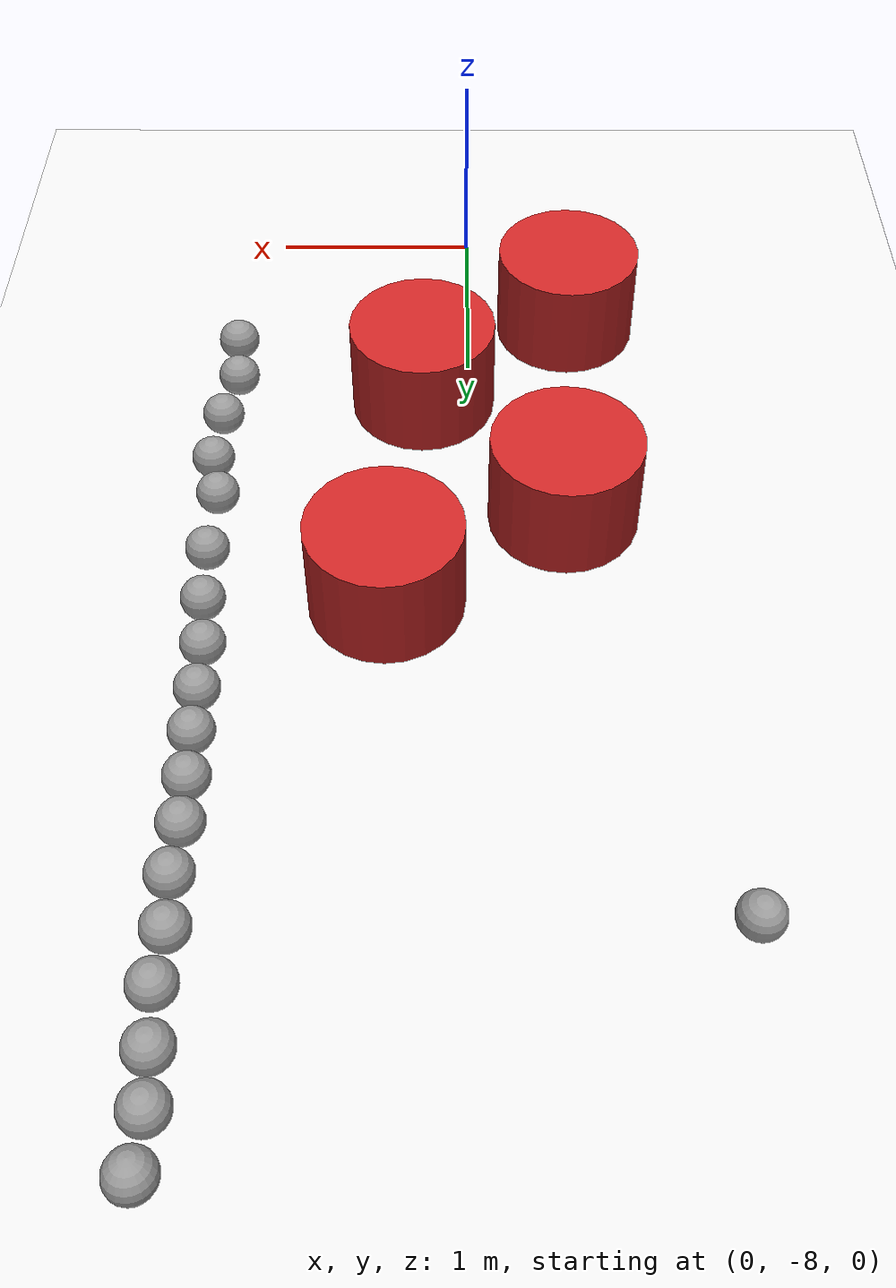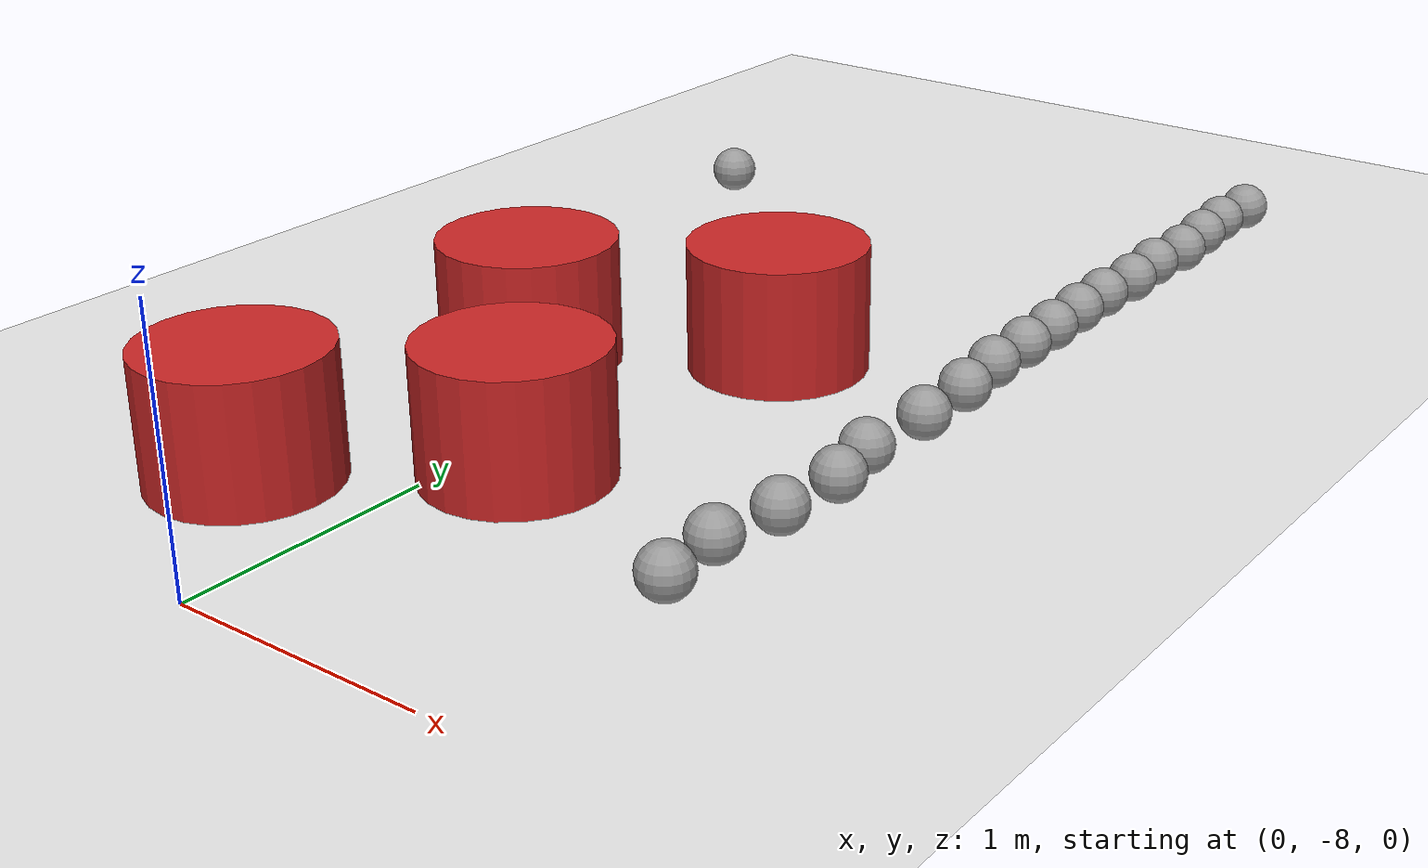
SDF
<sdf version="1.7">
 <world name="default">
  <model name="ground_plane">
   <static>1</static>
   <link name="link">
    <collision name="collision">
     <geometry><plane><normal>0 0 1</normal><size>100 100</size></plane></geometry>
     <surface>
      <contact><collide_bitmask>65535</collide_bitmask></contact>
      <friction><ode><mu>100</mu><mu2>50</mu2></ode></friction>
     </surface>
    </collision>
    <visual name="visual">
     <cast_shadows>0</cast_shadows>
     <geometry><plane><normal>0 0 1</normal><size>100 100</size></plane></geometry>
     <material>
      <script><uri>file://media/materials/scripts/gazebo.material</uri><name>Gazebo/White</name></script>
     </material>
    </visual>
   </link>
  </model>
  <model name="model8.3_0">
   <link name="link_1">
    <inertial>
     <mass>1</mass>
     <inertia><ixx>0.145833</ixx><ixy>0</ixy><ixz>0</ixz><iyy>0.145833</iyy><iyz>0</iyz><izz>0.125</izz></inertia>
    </inertial>
    <visual name="visual">
     <geometry><cylinder><radius>0.35</radius><length>0.5</length></cylinder></geometry>
     <material>
      <lighting>1</lighting>
      <script><uri>file://media/materials/scripts/gazebo.material</uri><name>Gazebo/Red</name></script>
      <shader type="pixel"><normal_map>__default__</normal_map></shader>
      <ambient>0.937 0.161 0.161 1</ambient>
      <diffuse>0.7 0.7 0.7 1</diffuse>
      <specular>0.01 0.01 0.01 1</specular>
      <emissive>0 0 0 1</emissive>
     </material>
    </visual>
    <collision name="collision">
     <geometry><cylinder><radius>0.35</radius><length>0.5</length></cylinder></geometry>
     <surface>
      <friction>
       <ode><mu>1</mu><mu2>1</mu2><fdir1>0 0 0</fdir1><slip1>0</slip1><slip2>0</slip2></ode>
       <torsional>
        <coefficient>1</coefficient>
        <patch_radius>0</patch_radius>
        <surface_radius>0</surface_radius>
        <use_patch_radius>1</use_patch_radius>
        <ode><slip>0</slip></ode>
       </torsional>
      </friction>
      <bounce><restitution_coefficient>0</restitution_coefficient><threshold>1e+06</threshold></bounce>
      <contact>
       <collide_without_contact>0</collide_without_contact>
       <collide_without_contact_bitmask>1</collide_without_contact_bitmask>
       <collide_bitmask>1</collide_bitmask>
       <ode>
        <soft_cfm>0</soft_cfm>
        <soft_erp>0.2</soft_erp>
        <kp>1e+13</kp>
        <kd>1</kd>
        <max_vel>0.01</max_vel>
        <min_depth>0</min_depth>
       </ode>
       <bullet>
        <split_impulse>1</split_impulse>
        <split_impulse_penetration_threshold>-0.01</split_impulse_penetration_threshold>
        <soft_cfm>0</soft_cfm>
        <soft_erp>0.2</soft_erp>
        <kp>1e+13</kp>
        <kd>1</kd>
       </bullet>
      </contact>
     </surface>
    </collision>
   </link>
   <static>0</static>
   <pose>-0.441492 -5.95517 0.249991 0 -0 0</pose>
  </model>
  <model name="model8.3_1">
   <link name="link_1">
    <inertial>
     <mass>1</mass>
     <inertia><ixx>0.145833</ixx><ixy>0</ixy><ixz>0</ixz><iyy>0.145833</iyy><iyz>0</iyz><izz>0.125</izz></inertia>
    </inertial>
    <visual name="visual">
     <geometry><cylinder><radius>0.35</radius><length>0.5</length></cylinder></geometry>
     <material>
      <lighting>1</lighting>
      <script><uri>file://media/materials/scripts/gazebo.material</uri><name>Gazebo/Red</name></script>
      <shader type="pixel"><normal_map>__default__</normal_map></shader>
      <ambient>0.937 0.161 0.161 1</ambient>
      <diffuse>0.7 0.7 0.7 1</diffuse>
      <specular>0.01 0.01 0.01 1</specular>
      <emissive>0 0 0 1</emissive>
     </material>
    </visual>
    <collision name="collision">
     <geometry><cylinder><radius>0.35</radius><length>0.5</length></cylinder></geometry>
     <surface>
      <friction>
       <ode><mu>1</mu><mu2>1</mu2><fdir1>0 0 0</fdir1><slip1>0</slip1><slip2>0</slip2></ode>
       <torsional>
        <coefficient>1</coefficient>
        <patch_radius>0</patch_radius>
        <surface_radius>0</surface_radius>
        <use_patch_radius>1</use_patch_radius>
        <ode><slip>0</slip></ode>
       </torsional>
      </friction>
      <bounce><restitution_coefficient>0</restitution_coefficient><threshold>1e+06</threshold></bounce>
      <contact>
       <collide_without_contact>0</collide_without_contact>
       <collide_without_contact_bitmask>1</collide_without_contact_bitmask>
       <collide_bitmask>1</collide_bitmask>
       <ode>
        <soft_cfm>0</soft_cfm>
        <soft_erp>0.2</soft_erp>
        <kp>1e+13</kp>
        <kd>1</kd>
        <max_vel>0.01</max_vel>
        <min_depth>0</min_depth>
       </ode>
       <bullet>
        <split_impulse>1</split_impulse>
        <split_impulse_penetration_threshold>-0.01</split_impulse_penetration_threshold>
        <soft_cfm>0</soft_cfm>
        <soft_erp>0.2</soft_erp>
        <kp>1e+13</kp>
        <kd>1</kd>
       </bullet>
      </contact>
     </surface>
    </collision>
   </link>
   <static>0</static>
   <pose>-0.509132 -7.31346 0.25 0 -0 0</pose>
  </model>
  <model name="model8.4_0">
   <link name="link_1">
    <inertial>
     <mass>1</mass>
     <inertia><ixx>0.145833</ixx><ixy>0</ixy><ixz>0</ixz><iyy>0.145833</iyy><iyz>0</iyz><izz>0.125</izz></inertia>
    </inertial>
    <visual name="visual">
     <geometry><cylinder><radius>0.35</radius><length>0.5</length></cylinder></geometry>
     <material>
      <lighting>1</lighting>
      <script><uri>file://media/materials/scripts/gazebo.material</uri><name>Gazebo/Red</name></script>
      <shader type="pixel"><normal_map>__default__</normal_map></shader>
      <ambient>0.808 0.361 0 1</ambient>
      <diffuse>0.7 0.7 0.7 1</diffuse>
      <specular>0.01 0.01 0.01 1</specular>
      <emissive>0 0 0 1</emissive>
     </material>
    </visual>
    <collision name="collision">
     <geometry><cylinder><radius>0.35</radius><length>0.5</length></cylinder></geometry>
     <surface>
      <friction>
       <ode><mu>1</mu><mu2>1</mu2><fdir1>0 0 0</fdir1><slip1>0</slip1><slip2>0</slip2></ode>
       <torsional>
        <coefficient>1</coefficient>
        <patch_radius>0</patch_radius>
        <surface_radius>0</surface_radius>
        <use_patch_radius>1</use_patch_radius>
        <ode><slip>0</slip></ode>
       </torsional>
      </friction>
      <bounce><restitution_coefficient>0</restitution_coefficient><threshold>1e+06</threshold></bounce>
      <contact>
       <collide_without_contact>0</collide_without_contact>
       <collide_without_contact_bitmask>1</collide_without_contact_bitmask>
       <collide_bitmask>1</collide_bitmask>
       <ode>
        <soft_cfm>0</soft_cfm>
        <soft_erp>0.2</soft_erp>
        <kp>1e+13</kp>
        <kd>1</kd>
        <max_vel>0.01</max_vel>
        <min_depth>0</min_depth>
       </ode>
       <bullet>
        <split_impulse>1</split_impulse>
        <split_impulse_penetration_threshold>-0.01</split_impulse_penetration_threshold>
        <soft_cfm>0</soft_cfm>
        <soft_erp>0.2</soft_erp>
        <kp>1e+13</kp>
        <kd>1</kd>
       </bullet>
      </contact>
     </surface>
    </collision>
   </link>
   <static>0</static>
   <pose>0.219118 -6.74461 0.25 0 -0 0</pose>
  </model>
  <model name="model8.4_1">
   <link name="link_1">
    <inertial>
     <mass>1</mass>
     <inertia><ixx>0.145833</ixx><ixy>0</ixy><ixz>0</ixz><iyy>0.145833</iyy><iyz>0</iyz><izz>0.125</izz></inertia>
    </inertial>
    <visual name="visual">
     <geometry><cylinder><radius>0.35</radius><length>0.5</length></cylinder></geometry>
     <material>
      <lighting>1</lighting>
      <script><uri>file://media/materials/scripts/gazebo.material</uri><name>Gazebo/Red</name></script>
      <shader type="pixel"><normal_map>__default__</normal_map></shader>
      <ambient>0.808 0.361 0 1</ambient>
      <diffuse>0.7 0.7 0.7 1</diffuse>
      <specular>0.01 0.01 0.01 1</specular>
      <emissive>0 0 0 1</emissive>
     </material>
    </visual>
    <collision name="collision">
     <geometry><cylinder><radius>0.35</radius><length>0.5</length></cylinder></geometry>
     <surface>
      <friction>
       <ode><mu>1</mu><mu2>1</mu2><fdir1>0 0 0</fdir1><slip1>0</slip1><slip2>0</slip2></ode>
       <torsional>
        <coefficient>1</coefficient>
        <patch_radius>0</patch_radius>
        <surface_radius>0</surface_radius>
        <use_patch_radius>1</use_patch_radius>
        <ode><slip>0</slip></ode>
       </torsional>
      </friction>
      <bounce><restitution_coefficient>0</restitution_coefficient><threshold>1e+06</threshold></bounce>
      <contact>
       <collide_without_contact>0</collide_without_contact>
       <collide_without_contact_bitmask>1</collide_without_contact_bitmask>
       <collide_bitmask>1</collide_bitmask>
       <ode>
        <soft_cfm>0</soft_cfm>
        <soft_erp>0.2</soft_erp>
        <kp>1e+13</kp>
        <kd>1</kd>
        <max_vel>0.01</max_vel>
        <min_depth>0</min_depth>
       </ode>
       <bullet>
        <split_impulse>1</split_impulse>
        <split_impulse_penetration_threshold>-0.01</split_impulse_penetration_threshold>
        <soft_cfm>0</soft_cfm>
        <soft_erp>0.2</soft_erp>
        <kp>1e+13</kp>
        <kd>1</kd>
       </bullet>
      </contact>
     </surface>
    </collision>
   </link>
   <static>0</static>
   <pose>0.362916 -5.43964 0.25 0 -0 0</pose>
  </model>
  <model name="sphere_7">
   <link name="link_0">
    <inertial>
     <mass>1</mass>
     <inertia><ixx>0.1</ixx><ixy>0</ixy><ixz>0</ixz><iyy>0.1</iyy><iyz>0</iyz><izz>0.1</izz></inertia>
    </inertial>
    <visual name="visual">
     <geometry><sphere><radius>0.1</radius></sphere></geometry>
     <material>
      <lighting>1</lighting>
      <script><uri>file://media/materials/scripts/gazebo.material</uri><name>Gazebo/Grey</name></script>
      <shader type="pixel"><normal_map>__default__</normal_map></shader>
      <ambient>0.3 0.3 0.3 1</ambient>
      <diffuse>0.7 0.7 0.7 1</diffuse>
      <specular>0.01 0.01 0.01 1</specular>
      <emissive>0 0 0 1</emissive>
     </material>
    </visual>
    <collision name="collision">
     <geometry><sphere><radius>0.1</radius></sphere></geometry>
     <surface>
      <friction>
       <ode><mu>1</mu><mu2>1</mu2><fdir1>0 0 0</fdir1><slip1>0</slip1><slip2>0</slip2></ode>
       <torsional>
        <coefficient>1</coefficient>
        <patch_radius>0</patch_radius>
        <surface_radius>0</surface_radius>
        <use_patch_radius>1</use_patch_radius>
        <ode><slip>0</slip></ode>
       </torsional>
      </friction>
      <bounce><restitution_coefficient>0</restitution_coefficient><threshold>1e+06</threshold></bounce>
      <contact>
       <collide_without_contact>0</collide_without_contact>
       <collide_without_contact_bitmask>1</collide_without_contact_bitmask>
       <collide_bitmask>1</collide_bitmask>
       <ode>
        <soft_cfm>0</soft_cfm>
        <soft_erp>0.2</soft_erp>
        <kp>1e+13</kp>
        <kd>1</kd>
        <max_vel>0.01</max_vel>
        <min_depth>0</min_depth>
       </ode>
       <bullet>
        <split_impulse>1</split_impulse>
        <split_impulse_penetration_threshold>-0.01</split_impulse_penetration_threshold>
        <soft_cfm>0</soft_cfm>
        <soft_erp>0.2</soft_erp>
        <kp>1e+13</kp>
        <kd>1</kd>
       </bullet>
      </contact>
     </surface>
    </collision>
   </link>
   <static>0</static>
   <pose>-1.07358 -3.84349 0.1 0 -0 0</pose>
  </model>
  <model name="sphere_37">
   <link name="link_0">
    <inertial>
     <mass>1</mass>
     <inertia><ixx>0.1</ixx><ixy>0</ixy><ixz>0</ixz><iyy>0.1</iyy><iyz>0</iyz><izz>0.1</izz></inertia>
    </inertial>
    <visual name="visual">
     <geometry><sphere><radius>0.1</radius></sphere></geometry>
     <material>
      <lighting>1</lighting>
      <script><uri>file://media/materials/scripts/gazebo.material</uri><name>Gazebo/Grey</name></script>
      <shader type="pixel"><normal_map>__default__</normal_map></shader>
      <ambient>0.3 0.3 0.3 1</ambient>
      <diffuse>0.7 0.7 0.7 1</diffuse>
      <specular>0.01 0.01 0.01 1</specular>
      <emissive>0 0 0 1</emissive>
     </material>
    </visual>
    <collision name="collision">
     <geometry><sphere><radius>0.1</radius></sphere></geometry>
     <surface>
      <friction>
       <ode><mu>1</mu><mu2>1</mu2><fdir1>0 0 0</fdir1><slip1>0</slip1><slip2>0</slip2></ode>
       <torsional>
        <coefficient>1</coefficient>
        <patch_radius>0</patch_radius>
        <surface_radius>0</surface_radius>
        <use_patch_radius>1</use_patch_radius>
        <ode><slip>0</slip></ode>
       </torsional>
      </friction>
      <bounce><restitution_coefficient>0</restitution_coefficient><threshold>1e+06</threshold></bounce>
      <contact>
       <collide_without_contact>0</collide_without_contact>
       <collide_without_contact_bitmask>1</collide_without_contact_bitmask>
       <collide_bitmask>1</collide_bitmask>
       <ode>
        <soft_cfm>0</soft_cfm>
        <soft_erp>0.2</soft_erp>
        <kp>1e+13</kp>
        <kd>1</kd>
        <max_vel>0.01</max_vel>
        <min_depth>0</min_depth>
       </ode>
       <bullet>
        <split_impulse>1</split_impulse>
        <split_impulse_penetration_threshold>-0.01</split_impulse_penetration_threshold>
        <soft_cfm>0</soft_cfm>
        <soft_erp>0.2</soft_erp>
        <kp>1e+13</kp>
        <kd>1</kd>
       </bullet>
      </contact>
     </surface>
    </collision>
   </link>
   <static>0</static>
   <pose>1.12535 -2.89863 0.1 0.168242 0.012729 -0.026032</pose>
  </model>
  <model name="sphere_38">
   <link name="link_0">
    <inertial>
     <mass>1</mass>
     <inertia><ixx>0.1</ixx><ixy>0</ixy><ixz>0</ixz><iyy>0.1</iyy><iyz>0</iyz><izz>0.1</izz></inertia>
    </inertial>
    <visual name="visual">
     <geometry><sphere><radius>0.1</radius></sphere></geometry>
     <material>
      <lighting>1</lighting>
      <script><uri>file://media/materials/scripts/gazebo.material</uri><name>Gazebo/Grey</name></script>
      <shader type="pixel"><normal_map>__default__</normal_map></shader>
      <ambient>0.3 0.3 0.3 1</ambient>
      <diffuse>0.7 0.7 0.7 1</diffuse>
      <specular>0.01 0.01 0.01 1</specular>
      <emissive>0 0 0 1</emissive>
     </material>
    </visual>
    <collision name="collision">
     <geometry><sphere><radius>0.1</radius></sphere></geometry>
     <surface>
      <friction>
       <ode><mu>1</mu><mu2>1</mu2><fdir1>0 0 0</fdir1><slip1>0</slip1><slip2>0</slip2></ode>
       <torsional>
        <coefficient>1</coefficient>
        <patch_radius>0</patch_radius>
        <surface_radius>0</surface_radius>
        <use_patch_radius>1</use_patch_radius>
        <ode><slip>0</slip></ode>
       </torsional>
      </friction>
      <bounce><restitution_coefficient>0</restitution_coefficient><threshold>1e+06</threshold></bounce>
      <contact>
       <collide_without_contact>0</collide_without_contact>
       <collide_without_contact_bitmask>1</collide_without_contact_bitmask>
       <collide_bitmask>1</collide_bitmask>
       <ode>
        <soft_cfm>0</soft_cfm>
        <soft_erp>0.2</soft_erp>
        <kp>1e+13</kp>
        <kd>1</kd>
        <max_vel>0.01</max_vel>
        <min_depth>0</min_depth>
       </ode>
       <bullet>
        <split_impulse>1</split_impulse>
        <split_impulse_penetration_threshold>-0.01</split_impulse_penetration_threshold>
        <soft_cfm>0</soft_cfm>
        <soft_erp>0.2</soft_erp>
        <kp>1e+13</kp>
        <kd>1</kd>
       </bullet>
      </contact>
     </surface>
    </collision>
   </link>
   <static>0</static>
   <pose>1.11071 -3.12075 0.1 0 -0 0</pose>
  </model>
  <model name="sphere_39">
   <link name="link_0">
    <inertial>
     <mass>1</mass>
     <inertia><ixx>0.1</ixx><ixy>0</ixy><ixz>0</ixz><iyy>0.1</iyy><iyz>0</iyz><izz>0.1</izz></inertia>
    </inertial>
    <visual name="visual">
     <geometry><sphere><radius>0.1</radius></sphere></geometry>
     <material>
      <lighting>1</lighting>
      <script><uri>file://media/materials/scripts/gazebo.material</uri><name>Gazebo/Grey</name></script>
      <shader type="pixel"><normal_map>__default__</normal_map></shader>
      <ambient>0.3 0.3 0.3 1</ambient>
      <diffuse>0.7 0.7 0.7 1</diffuse>
      <specular>0.01 0.01 0.01 1</specular>
      <emissive>0 0 0 1</emissive>
     </material>
    </visual>
    <collision name="collision">
     <geometry><sphere><radius>0.1</radius></sphere></geometry>
     <surface>
      <friction>
       <ode><mu>1</mu><mu2>1</mu2><fdir1>0 0 0</fdir1><slip1>0</slip1><slip2>0</slip2></ode>
       <torsional>
        <coefficient>1</coefficient>
        <patch_radius>0</patch_radius>
        <surface_radius>0</surface_radius>
        <use_patch_radius>1</use_patch_radius>
        <ode><slip>0</slip></ode>
       </torsional>
      </friction>
      <bounce><restitution_coefficient>0</restitution_coefficient><threshold>1e+06</threshold></bounce>
      <contact>
       <collide_without_contact>0</collide_without_contact>
       <collide_without_contact_bitmask>1</collide_without_contact_bitmask>
       <collide_bitmask>1</collide_bitmask>
       <ode>
        <soft_cfm>0</soft_cfm>
        <soft_erp>0.2</soft_erp>
        <kp>1e+13</kp>
        <kd>1</kd>
        <max_vel>0.01</max_vel>
        <min_depth>0</min_depth>
       </ode>
       <bullet>
        <split_impulse>1</split_impulse>
        <split_impulse_penetration_threshold>-0.01</split_impulse_penetration_threshold>
        <soft_cfm>0</soft_cfm>
        <soft_erp>0.2</soft_erp>
        <kp>1e+13</kp>
        <kd>1</kd>
       </bullet>
      </contact>
     </surface>
    </collision>
   </link>
   <static>0</static>
   <pose>1.12497 -3.33582 0.1 0 -0 0</pose>
  </model>
  <model name="sphere_40">
   <link name="link_0">
    <inertial>
     <mass>1</mass>
     <inertia><ixx>0.1</ixx><ixy>0</ixy><ixz>0</ixz><iyy>0.1</iyy><iyz>0</iyz><izz>0.1</izz></inertia>
    </inertial>
    <visual name="visual">
     <geometry><sphere><radius>0.1</radius></sphere></geometry>
     <material>
      <lighting>1</lighting>
      <script><uri>file://media/materials/scripts/gazebo.material</uri><name>Gazebo/Grey</name></script>
      <shader type="pixel"><normal_map>__default__</normal_map></shader>
      <ambient>0.3 0.3 0.3 1</ambient>
      <diffuse>0.7 0.7 0.7 1</diffuse>
      <specular>0.01 0.01 0.01 1</specular>
      <emissive>0 0 0 1</emissive>
     </material>
    </visual>
    <collision name="collision">
     <geometry><sphere><radius>0.1</radius></sphere></geometry>
     <surface>
      <friction>
       <ode><mu>1</mu><mu2>1</mu2><fdir1>0 0 0</fdir1><slip1>0</slip1><slip2>0</slip2></ode>
       <torsional>
        <coefficient>1</coefficient>
        <patch_radius>0</patch_radius>
        <surface_radius>0</surface_radius>
        <use_patch_radius>1</use_patch_radius>
        <ode><slip>0</slip></ode>
       </torsional>
      </friction>
      <bounce><restitution_coefficient>0</restitution_coefficient><threshold>1e+06</threshold></bounce>
      <contact>
       <collide_without_contact>0</collide_without_contact>
       <collide_without_contact_bitmask>1</collide_without_contact_bitmask>
       <collide_bitmask>1</collide_bitmask>
       <ode>
        <soft_cfm>0</soft_cfm>
        <soft_erp>0.2</soft_erp>
        <kp>1e+13</kp>
        <kd>1</kd>
        <max_vel>0.01</max_vel>
        <min_depth>0</min_depth>
       </ode>
       <bullet>
        <split_impulse>1</split_impulse>
        <split_impulse_penetration_threshold>-0.01</split_impulse_penetration_threshold>
        <soft_cfm>0</soft_cfm>
        <soft_erp>0.2</soft_erp>
        <kp>1e+13</kp>
        <kd>1</kd>
       </bullet>
      </contact>
     </surface>
    </collision>
   </link>
   <static>0</static>
   <pose>1.14355 -3.57163 0.1 0 -0 0</pose>
  </model>
  <model name="sphere_41">
   <link name="link_0">
    <inertial>
     <mass>1</mass>
     <inertia><ixx>0.1</ixx><ixy>0</ixy><ixz>0</ixz><iyy>0.1</iyy><iyz>0</iyz><izz>0.1</izz></inertia>
    </inertial>
    <visual name="visual">
     <geometry><sphere><radius>0.1</radius></sphere></geometry>
     <material>
      <lighting>1</lighting>
      <script><uri>file://media/materials/scripts/gazebo.material</uri><name>Gazebo/Grey</name></script>
      <shader type="pixel"><normal_map>__default__</normal_map></shader>
      <ambient>0.3 0.3 0.3 1</ambient>
      <diffuse>0.7 0.7 0.7 1</diffuse>
      <specular>0.01 0.01 0.01 1</specular>
      <emissive>0 0 0 1</emissive>
     </material>
    </visual>
    <collision name="collision">
     <geometry><sphere><radius>0.1</radius></sphere></geometry>
     <surface>
      <friction>
       <ode><mu>1</mu><mu2>1</mu2><fdir1>0 0 0</fdir1><slip1>0</slip1><slip2>0</slip2></ode>
       <torsional>
        <coefficient>1</coefficient>
        <patch_radius>0</patch_radius>
        <surface_radius>0</surface_radius>
        <use_patch_radius>1</use_patch_radius>
        <ode><slip>0</slip></ode>
       </torsional>
      </friction>
      <bounce><restitution_coefficient>0</restitution_coefficient><threshold>1e+06</threshold></bounce>
      <contact>
       <collide_without_contact>0</collide_without_contact>
       <collide_without_contact_bitmask>1</collide_without_contact_bitmask>
       <collide_bitmask>1</collide_bitmask>
       <ode>
        <soft_cfm>0</soft_cfm>
        <soft_erp>0.2</soft_erp>
        <kp>1e+13</kp>
        <kd>1</kd>
        <max_vel>0.01</max_vel>
        <min_depth>0</min_depth>
       </ode>
       <bullet>
        <split_impulse>1</split_impulse>
        <split_impulse_penetration_threshold>-0.01</split_impulse_penetration_threshold>
        <soft_cfm>0</soft_cfm>
        <soft_erp>0.2</soft_erp>
        <kp>1e+13</kp>
        <kd>1</kd>
       </bullet>
      </contact>
     </surface>
    </collision>
   </link>
   <static>0</static>
   <pose>1.12477 -3.79542 0.1 0 -0 0</pose>
  </model>
  <model name="sphere_42">
   <link name="link_0">
    <inertial>
     <mass>1</mass>
     <inertia><ixx>0.1</ixx><ixy>0</ixy><ixz>0</ixz><iyy>0.1</iyy><iyz>0</iyz><izz>0.1</izz></inertia>
    </inertial>
    <visual name="visual">
     <geometry><sphere><radius>0.1</radius></sphere></geometry>
     <material>
      <lighting>1</lighting>
      <script><uri>file://media/materials/scripts/gazebo.material</uri><name>Gazebo/Grey</name></script>
      <shader type="pixel"><normal_map>__default__</normal_map></shader>
      <ambient>0.3 0.3 0.3 1</ambient>
      <diffuse>0.7 0.7 0.7 1</diffuse>
      <specular>0.01 0.01 0.01 1</specular>
      <emissive>0 0 0 1</emissive>
     </material>
    </visual>
    <collision name="collision">
     <geometry><sphere><radius>0.1</radius></sphere></geometry>
     <surface>
      <friction>
       <ode><mu>1</mu><mu2>1</mu2><fdir1>0 0 0</fdir1><slip1>0</slip1><slip2>0</slip2></ode>
       <torsional>
        <coefficient>1</coefficient>
        <patch_radius>0</patch_radius>
        <surface_radius>0</surface_radius>
        <use_patch_radius>1</use_patch_radius>
        <ode><slip>0</slip></ode>
       </torsional>
      </friction>
      <bounce><restitution_coefficient>0</restitution_coefficient><threshold>1e+06</threshold></bounce>
      <contact>
       <collide_without_contact>0</collide_without_contact>
       <collide_without_contact_bitmask>1</collide_without_contact_bitmask>
       <collide_bitmask>1</collide_bitmask>
       <ode>
        <soft_cfm>0</soft_cfm>
        <soft_erp>0.2</soft_erp>
        <kp>1e+13</kp>
        <kd>1</kd>
        <max_vel>0.01</max_vel>
        <min_depth>0</min_depth>
       </ode>
       <bullet>
        <split_impulse>1</split_impulse>
        <split_impulse_penetration_threshold>-0.01</split_impulse_penetration_threshold>
        <soft_cfm>0</soft_cfm>
        <soft_erp>0.2</soft_erp>
        <kp>1e+13</kp>
        <kd>1</kd>
       </bullet>
      </contact>
     </surface>
    </collision>
   </link>
   <static>0</static>
   <pose>1.1374 -4.01935 0.1 0 -0 0</pose>
  </model>
  <model name="sphere_43">
   <link name="link_0">
    <inertial>
     <mass>1</mass>
     <inertia><ixx>0.1</ixx><ixy>0</ixy><ixz>0</ixz><iyy>0.1</iyy><iyz>0</iyz><izz>0.1</izz></inertia>
    </inertial>
    <visual name="visual">
     <geometry><sphere><radius>0.1</radius></sphere></geometry>
     <material>
      <lighting>1</lighting>
      <script><uri>file://media/materials/scripts/gazebo.material</uri><name>Gazebo/Grey</name></script>
      <shader type="pixel"><normal_map>__default__</normal_map></shader>
      <ambient>0.3 0.3 0.3 1</ambient>
      <diffuse>0.7 0.7 0.7 1</diffuse>
      <specular>0.01 0.01 0.01 1</specular>
      <emissive>0 0 0 1</emissive>
     </material>
    </visual>
    <collision name="collision">
     <geometry><sphere><radius>0.1</radius></sphere></geometry>
     <surface>
      <friction>
       <ode><mu>1</mu><mu2>1</mu2><fdir1>0 0 0</fdir1><slip1>0</slip1><slip2>0</slip2></ode>
       <torsional>
        <coefficient>1</coefficient>
        <patch_radius>0</patch_radius>
        <surface_radius>0</surface_radius>
        <use_patch_radius>1</use_patch_radius>
        <ode><slip>0</slip></ode>
       </torsional>
      </friction>
      <bounce><restitution_coefficient>0</restitution_coefficient><threshold>1e+06</threshold></bounce>
      <contact>
       <collide_without_contact>0</collide_without_contact>
       <collide_without_contact_bitmask>1</collide_without_contact_bitmask>
       <collide_bitmask>1</collide_bitmask>
       <ode>
        <soft_cfm>0</soft_cfm>
        <soft_erp>0.2</soft_erp>
        <kp>1e+13</kp>
        <kd>1</kd>
        <max_vel>0.01</max_vel>
        <min_depth>0</min_depth>
       </ode>
       <bullet>
        <split_impulse>1</split_impulse>
        <split_impulse_penetration_threshold>-0.01</split_impulse_penetration_threshold>
        <soft_cfm>0</soft_cfm>
        <soft_erp>0.2</soft_erp>
        <kp>1e+13</kp>
        <kd>1</kd>
       </bullet>
      </contact>
     </surface>
    </collision>
   </link>
   <static>0</static>
   <pose>1.1228 -4.2431 0.1 0 -0 0</pose>
  </model>
  <model name="sphere_44">
   <link name="link_0">
    <inertial>
     <mass>1</mass>
     <inertia><ixx>0.1</ixx><ixy>0</ixy><ixz>0</ixz><iyy>0.1</iyy><iyz>0</iyz><izz>0.1</izz></inertia>
    </inertial>
    <visual name="visual">
     <geometry><sphere><radius>0.1</radius></sphere></geometry>
     <material>
      <lighting>1</lighting>
      <script><uri>file://media/materials/scripts/gazebo.material</uri><name>Gazebo/Grey</name></script>
      <shader type="pixel"><normal_map>__default__</normal_map></shader>
      <ambient>0.3 0.3 0.3 1</ambient>
      <diffuse>0.7 0.7 0.7 1</diffuse>
      <specular>0.01 0.01 0.01 1</specular>
      <emissive>0 0 0 1</emissive>
     </material>
    </visual>
    <collision name="collision">
     <geometry><sphere><radius>0.1</radius></sphere></geometry>
     <surface>
      <friction>
       <ode><mu>1</mu><mu2>1</mu2><fdir1>0 0 0</fdir1><slip1>0</slip1><slip2>0</slip2></ode>
       <torsional>
        <coefficient>1</coefficient>
        <patch_radius>0</patch_radius>
        <surface_radius>0</surface_radius>
        <use_patch_radius>1</use_patch_radius>
        <ode><slip>0</slip></ode>
       </torsional>
      </friction>
      <bounce><restitution_coefficient>0</restitution_coefficient><threshold>1e+06</threshold></bounce>
      <contact>
       <collide_without_contact>0</collide_without_contact>
       <collide_without_contact_bitmask>1</collide_without_contact_bitmask>
       <collide_bitmask>1</collide_bitmask>
       <ode>
        <soft_cfm>0</soft_cfm>
        <soft_erp>0.2</soft_erp>
        <kp>1e+13</kp>
        <kd>1</kd>
        <max_vel>0.01</max_vel>
        <min_depth>0</min_depth>
       </ode>
       <bullet>
        <split_impulse>1</split_impulse>
        <split_impulse_penetration_threshold>-0.01</split_impulse_penetration_threshold>
        <soft_cfm>0</soft_cfm>
        <soft_erp>0.2</soft_erp>
        <kp>1e+13</kp>
        <kd>1</kd>
       </bullet>
      </contact>
     </surface>
    </collision>
   </link>
   <static>0</static>
   <pose>1.12465 -4.45438 0.1 0 -0 0</pose>
  </model>
  <model name="sphere_45">
   <link name="link_0">
    <inertial>
     <mass>1</mass>
     <inertia><ixx>0.1</ixx><ixy>0</ixy><ixz>0</ixz><iyy>0.1</iyy><iyz>0</iyz><izz>0.1</izz></inertia>
    </inertial>
    <visual name="visual">
     <geometry><sphere><radius>0.1</radius></sphere></geometry>
     <material>
      <lighting>1</lighting>
      <script><uri>file://media/materials/scripts/gazebo.material</uri><name>Gazebo/Grey</name></script>
      <shader type="pixel"><normal_map>__default__</normal_map></shader>
      <ambient>0.3 0.3 0.3 1</ambient>
      <diffuse>0.7 0.7 0.7 1</diffuse>
      <specular>0.01 0.01 0.01 1</specular>
      <emissive>0 0 0 1</emissive>
     </material>
    </visual>
    <collision name="collision">
     <geometry><sphere><radius>0.1</radius></sphere></geometry>
     <surface>
      <friction>
       <ode><mu>1</mu><mu2>1</mu2><fdir1>0 0 0</fdir1><slip1>0</slip1><slip2>0</slip2></ode>
       <torsional>
        <coefficient>1</coefficient>
        <patch_radius>0</patch_radius>
        <surface_radius>0</surface_radius>
        <use_patch_radius>1</use_patch_radius>
        <ode><slip>0</slip></ode>
       </torsional>
      </friction>
      <bounce><restitution_coefficient>0</restitution_coefficient><threshold>1e+06</threshold></bounce>
      <contact>
       <collide_without_contact>0</collide_without_contact>
       <collide_without_contact_bitmask>1</collide_without_contact_bitmask>
       <collide_bitmask>1</collide_bitmask>
       <ode>
        <soft_cfm>0</soft_cfm>
        <soft_erp>0.2</soft_erp>
        <kp>1e+13</kp>
        <kd>1</kd>
        <max_vel>0.01</max_vel>
        <min_depth>0</min_depth>
       </ode>
       <bullet>
        <split_impulse>1</split_impulse>
        <split_impulse_penetration_threshold>-0.01</split_impulse_penetration_threshold>
        <soft_cfm>0</soft_cfm>
        <soft_erp>0.2</soft_erp>
        <kp>1e+13</kp>
        <kd>1</kd>
       </bullet>
      </contact>
     </surface>
    </collision>
   </link>
   <static>0</static>
   <pose>1.13072 -4.67398 0.1 0 -0 0</pose>
  </model>
  <model name="sphere_46">
   <link name="link_0">
    <inertial>
     <mass>1</mass>
     <inertia><ixx>0.1</ixx><ixy>0</ixy><ixz>0</ixz><iyy>0.1</iyy><iyz>0</iyz><izz>0.1</izz></inertia>
    </inertial>
    <visual name="visual">
     <geometry><sphere><radius>0.1</radius></sphere></geometry>
     <material>
      <lighting>1</lighting>
      <script><uri>file://media/materials/scripts/gazebo.material</uri><name>Gazebo/Grey</name></script>
      <shader type="pixel"><normal_map>__default__</normal_map></shader>
      <ambient>0.3 0.3 0.3 1</ambient>
      <diffuse>0.7 0.7 0.7 1</diffuse>
      <specular>0.01 0.01 0.01 1</specular>
      <emissive>0 0 0 1</emissive>
     </material>
    </visual>
    <collision name="collision">
     <geometry><sphere><radius>0.1</radius></sphere></geometry>
     <surface>
      <friction>
       <ode><mu>1</mu><mu2>1</mu2><fdir1>0 0 0</fdir1><slip1>0</slip1><slip2>0</slip2></ode>
       <torsional>
        <coefficient>1</coefficient>
        <patch_radius>0</patch_radius>
        <surface_radius>0</surface_radius>
        <use_patch_radius>1</use_patch_radius>
        <ode><slip>0</slip></ode>
       </torsional>
      </friction>
      <bounce><restitution_coefficient>0</restitution_coefficient><threshold>1e+06</threshold></bounce>
      <contact>
       <collide_without_contact>0</collide_without_contact>
       <collide_without_contact_bitmask>1</collide_without_contact_bitmask>
       <collide_bitmask>1</collide_bitmask>
       <ode>
        <soft_cfm>0</soft_cfm>
        <soft_erp>0.2</soft_erp>
        <kp>1e+13</kp>
        <kd>1</kd>
        <max_vel>0.01</max_vel>
        <min_depth>0</min_depth>
       </ode>
       <bullet>
        <split_impulse>1</split_impulse>
        <split_impulse_penetration_threshold>-0.01</split_impulse_penetration_threshold>
        <soft_cfm>0</soft_cfm>
        <soft_erp>0.2</soft_erp>
        <kp>1e+13</kp>
        <kd>1</kd>
       </bullet>
      </contact>
     </surface>
    </collision>
   </link>
   <static>0</static>
   <pose>1.13261 -4.88956 0.1 0 -0 0</pose>
  </model>
  <model name="sphere_47">
   <link name="link_0">
    <inertial>
     <mass>1</mass>
     <inertia><ixx>0.1</ixx><ixy>0</ixy><ixz>0</ixz><iyy>0.1</iyy><iyz>0</iyz><izz>0.1</izz></inertia>
    </inertial>
    <visual name="visual">
     <geometry><sphere><radius>0.1</radius></sphere></geometry>
     <material>
      <lighting>1</lighting>
      <script><uri>file://media/materials/scripts/gazebo.material</uri><name>Gazebo/Grey</name></script>
      <shader type="pixel"><normal_map>__default__</normal_map></shader>
      <ambient>0.3 0.3 0.3 1</ambient>
      <diffuse>0.7 0.7 0.7 1</diffuse>
      <specular>0.01 0.01 0.01 1</specular>
      <emissive>0 0 0 1</emissive>
     </material>
    </visual>
    <collision name="collision">
     <geometry><sphere><radius>0.1</radius></sphere></geometry>
     <surface>
      <friction>
       <ode><mu>1</mu><mu2>1</mu2><fdir1>0 0 0</fdir1><slip1>0</slip1><slip2>0</slip2></ode>
       <torsional>
        <coefficient>1</coefficient>
        <patch_radius>0</patch_radius>
        <surface_radius>0</surface_radius>
        <use_patch_radius>1</use_patch_radius>
        <ode><slip>0</slip></ode>
       </torsional>
      </friction>
      <bounce><restitution_coefficient>0</restitution_coefficient><threshold>1e+06</threshold></bounce>
      <contact>
       <collide_without_contact>0</collide_without_contact>
       <collide_without_contact_bitmask>1</collide_without_contact_bitmask>
       <collide_bitmask>1</collide_bitmask>
       <ode>
        <soft_cfm>0</soft_cfm>
        <soft_erp>0.2</soft_erp>
        <kp>1e+13</kp>
        <kd>1</kd>
        <max_vel>0.01</max_vel>
        <min_depth>0</min_depth>
       </ode>
       <bullet>
        <split_impulse>1</split_impulse>
        <split_impulse_penetration_threshold>-0.01</split_impulse_penetration_threshold>
        <soft_cfm>0</soft_cfm>
        <soft_erp>0.2</soft_erp>
        <kp>1e+13</kp>
        <kd>1</kd>
       </bullet>
      </contact>
     </surface>
    </collision>
   </link>
   <static>0</static>
   <pose>1.13468 -5.12597 0.1 0 -0 0</pose>
  </model>
  <model name="sphere_48">
   <link name="link_0">
    <inertial>
     <mass>1</mass>
     <inertia><ixx>0.1</ixx><ixy>0</ixy><ixz>0</ixz><iyy>0.1</iyy><iyz>0</iyz><izz>0.1</izz></inertia>
    </inertial>
    <visual name="visual">
     <geometry><sphere><radius>0.1</radius></sphere></geometry>
     <material>
      <lighting>1</lighting>
      <script><uri>file://media/materials/scripts/gazebo.material</uri><name>Gazebo/Grey</name></script>
      <shader type="pixel"><normal_map>__default__</normal_map></shader>
      <ambient>0.3 0.3 0.3 1</ambient>
      <diffuse>0.7 0.7 0.7 1</diffuse>
      <specular>0.01 0.01 0.01 1</specular>
      <emissive>0 0 0 1</emissive>
     </material>
    </visual>
    <collision name="collision">
     <geometry><sphere><radius>0.1</radius></sphere></geometry>
     <surface>
      <friction>
       <ode><mu>1</mu><mu2>1</mu2><fdir1>0 0 0</fdir1><slip1>0</slip1><slip2>0</slip2></ode>
       <torsional>
        <coefficient>1</coefficient>
        <patch_radius>0</patch_radius>
        <surface_radius>0</surface_radius>
        <use_patch_radius>1</use_patch_radius>
        <ode><slip>0</slip></ode>
       </torsional>
      </friction>
      <bounce><restitution_coefficient>0</restitution_coefficient><threshold>1e+06</threshold></bounce>
      <contact>
       <collide_without_contact>0</collide_without_contact>
       <collide_without_contact_bitmask>1</collide_without_contact_bitmask>
       <collide_bitmask>1</collide_bitmask>
       <ode>
        <soft_cfm>0</soft_cfm>
        <soft_erp>0.2</soft_erp>
        <kp>1e+13</kp>
        <kd>1</kd>
        <max_vel>0.01</max_vel>
        <min_depth>0</min_depth>
       </ode>
       <bullet>
        <split_impulse>1</split_impulse>
        <split_impulse_penetration_threshold>-0.01</split_impulse_penetration_threshold>
        <soft_cfm>0</soft_cfm>
        <soft_erp>0.2</soft_erp>
        <kp>1e+13</kp>
        <kd>1</kd>
       </bullet>
      </contact>
     </surface>
    </collision>
   </link>
   <static>0</static>
   <pose>1.16174 -5.37471 0.1 0 -0 0</pose>
  </model>
  <model name="sphere_113">
   <link name="link_0">
    <inertial>
     <mass>1</mass>
     <inertia><ixx>0.1</ixx><ixy>0</ixy><ixz>0</ixz><iyy>0.1</iyy><iyz>0</iyz><izz>0.1</izz></inertia>
    </inertial>
    <visual name="visual">
     <geometry><sphere><radius>0.1</radius></sphere></geometry>
     <material>
      <lighting>1</lighting>
      <script><uri>file://media/materials/scripts/gazebo.material</uri><name>Gazebo/Grey</name></script>
      <shader type="pixel"><normal_map>__default__</normal_map></shader>
      <ambient>0.3 0.3 0.3 1</ambient>
      <diffuse>0.7 0.7 0.7 1</diffuse>
      <specular>0.01 0.01 0.01 1</specular>
      <emissive>0 0 0 1</emissive>
     </material>
    </visual>
    <collision name="collision">
     <geometry><sphere><radius>0.1</radius></sphere></geometry>
     <surface>
      <friction>
       <ode><mu>1</mu><mu2>1</mu2><fdir1>0 0 0</fdir1><slip1>0</slip1><slip2>0</slip2></ode>
       <torsional>
        <coefficient>1</coefficient>
        <patch_radius>0</patch_radius>
        <surface_radius>0</surface_radius>
        <use_patch_radius>1</use_patch_radius>
        <ode><slip>0</slip></ode>
       </torsional>
      </friction>
      <bounce><restitution_coefficient>0</restitution_coefficient><threshold>1e+06</threshold></bounce>
      <contact>
       <collide_without_contact>0</collide_without_contact>
       <collide_without_contact_bitmask>1</collide_without_contact_bitmask>
       <collide_bitmask>1</collide_bitmask>
       <ode>
        <soft_cfm>0</soft_cfm>
        <soft_erp>0.2</soft_erp>
        <kp>1e+13</kp>
        <kd>1</kd>
        <max_vel>0.01</max_vel>
        <min_depth>0</min_depth>
       </ode>
       <bullet>
        <split_impulse>1</split_impulse>
        <split_impulse_penetration_threshold>-0.01</split_impulse_penetration_threshold>
        <soft_cfm>0</soft_cfm>
        <soft_erp>0.2</soft_erp>
        <kp>1e+13</kp>
        <kd>1</kd>
       </bullet>
      </contact>
     </surface>
    </collision>
   </link>
   <static>0</static>
   <pose>1.1735 -5.66849 0.1 0 -0 0</pose>
  </model>
  <model name="sphere_114">
   <link name="link_0">
    <inertial>
     <mass>1</mass>
     <inertia><ixx>0.1</ixx><ixy>0</ixy><ixz>0</ixz><iyy>0.1</iyy><iyz>0</iyz><izz>0.1</izz></inertia>
    </inertial>
    <visual name="visual">
     <geometry><sphere><radius>0.1</radius></sphere></geometry>
     <material>
      <lighting>1</lighting>
      <script><uri>file://media/materials/scripts/gazebo.material</uri><name>Gazebo/Grey</name></script>
      <shader type="pixel"><normal_map>__default__</normal_map></shader>
      <ambient>0.3 0.3 0.3 1</ambient>
      <diffuse>0.7 0.7 0.7 1</diffuse>
      <specular>0.01 0.01 0.01 1</specular>
      <emissive>0 0 0 1</emissive>
     </material>
    </visual>
    <collision name="collision">
     <geometry><sphere><radius>0.1</radius></sphere></geometry>
     <surface>
      <friction>
       <ode><mu>1</mu><mu2>1</mu2><fdir1>0 0 0</fdir1><slip1>0</slip1><slip2>0</slip2></ode>
       <torsional>
        <coefficient>1</coefficient>
        <patch_radius>0</patch_radius>
        <surface_radius>0</surface_radius>
        <use_patch_radius>1</use_patch_radius>
        <ode><slip>0</slip></ode>
       </torsional>
      </friction>
      <bounce><restitution_coefficient>0</restitution_coefficient><threshold>1e+06</threshold></bounce>
      <contact>
       <collide_without_contact>0</collide_without_contact>
       <collide_without_contact_bitmask>1</collide_without_contact_bitmask>
       <collide_bitmask>1</collide_bitmask>
       <ode>
        <soft_cfm>0</soft_cfm>
        <soft_erp>0.2</soft_erp>
        <kp>1e+13</kp>
        <kd>1</kd>
        <max_vel>0.01</max_vel>
        <min_depth>0</min_depth>
       </ode>
       <bullet>
        <split_impulse>1</split_impulse>
        <split_impulse_penetration_threshold>-0.01</split_impulse_penetration_threshold>
        <soft_cfm>0</soft_cfm>
        <soft_erp>0.2</soft_erp>
        <kp>1e+13</kp>
        <kd>1</kd>
       </bullet>
      </contact>
     </surface>
    </collision>
   </link>
   <static>0</static>
   <pose>1.16185 -6.01322 0.1 0 -0 0</pose>
  </model>
  <model name="sphere_115">
   <link name="link_0">
    <inertial>
     <mass>1</mass>
     <inertia><ixx>0.1</ixx><ixy>0</ixy><ixz>0</ixz><iyy>0.1</iyy><iyz>0</iyz><izz>0.1</izz></inertia>
    </inertial>
    <visual name="visual">
     <geometry><sphere><radius>0.1</radius></sphere></geometry>
     <material>
      <lighting>1</lighting>
      <script><uri>file://media/materials/scripts/gazebo.material</uri><name>Gazebo/Grey</name></script>
      <shader type="pixel"><normal_map>__default__</normal_map></shader>
      <ambient>0.3 0.3 0.3 1</ambient>
      <diffuse>0.7 0.7 0.7 1</diffuse>
      <specular>0.01 0.01 0.01 1</specular>
      <emissive>0 0 0 1</emissive>
     </material>
    </visual>
    <collision name="collision">
     <geometry><sphere><radius>0.1</radius></sphere></geometry>
     <surface>
      <friction>
       <ode><mu>1</mu><mu2>1</mu2><fdir1>0 0 0</fdir1><slip1>0</slip1><slip2>0</slip2></ode>
       <torsional>
        <coefficient>1</coefficient>
        <patch_radius>0</patch_radius>
        <surface_radius>0</surface_radius>
        <use_patch_radius>1</use_patch_radius>
        <ode><slip>0</slip></ode>
       </torsional>
      </friction>
      <bounce><restitution_coefficient>0</restitution_coefficient><threshold>1e+06</threshold></bounce>
      <contact>
       <collide_without_contact>0</collide_without_contact>
       <collide_without_contact_bitmask>1</collide_without_contact_bitmask>
       <collide_bitmask>1</collide_bitmask>
       <ode>
        <soft_cfm>0</soft_cfm>
        <soft_erp>0.2</soft_erp>
        <kp>1e+13</kp>
        <kd>1</kd>
        <max_vel>0.01</max_vel>
        <min_depth>0</min_depth>
       </ode>
       <bullet>
        <split_impulse>1</split_impulse>
        <split_impulse_penetration_threshold>-0.01</split_impulse_penetration_threshold>
        <soft_cfm>0</soft_cfm>
        <soft_erp>0.2</soft_erp>
        <kp>1e+13</kp>
        <kd>1</kd>
       </bullet>
      </contact>
     </surface>
    </collision>
   </link>
   <static>0</static>
   <pose>1.20708 -6.24842 0.1 0 -0 0</pose>
  </model>
  <model name="sphere_116">
   <link name="link_0">
    <inertial>
     <mass>1</mass>
     <inertia><ixx>0.1</ixx><ixy>0</ixy><ixz>0</ixz><iyy>0.1</iyy><iyz>0</iyz><izz>0.1</izz></inertia>
    </inertial>
    <visual name="visual">
     <geometry><sphere><radius>0.1</radius></sphere></geometry>
     <material>
      <lighting>1</lighting>
      <script><uri>file://media/materials/scripts/gazebo.material</uri><name>Gazebo/Grey</name></script>
      <shader type="pixel"><normal_map>__default__</normal_map></shader>
      <ambient>0.3 0.3 0.3 1</ambient>
      <diffuse>0.7 0.7 0.7 1</diffuse>
      <specular>0.01 0.01 0.01 1</specular>
      <emissive>0 0 0 1</emissive>
     </material>
    </visual>
    <collision name="collision">
     <geometry><sphere><radius>0.1</radius></sphere></geometry>
     <surface>
      <friction>
       <ode><mu>1</mu><mu2>1</mu2><fdir1>0 0 0</fdir1><slip1>0</slip1><slip2>0</slip2></ode>
       <torsional>
        <coefficient>1</coefficient>
        <patch_radius>0</patch_radius>
        <surface_radius>0</surface_radius>
        <use_patch_radius>1</use_patch_radius>
        <ode><slip>0</slip></ode>
       </torsional>
      </friction>
      <bounce><restitution_coefficient>0</restitution_coefficient><threshold>1e+06</threshold></bounce>
      <contact>
       <collide_without_contact>0</collide_without_contact>
       <collide_without_contact_bitmask>1</collide_without_contact_bitmask>
       <collide_bitmask>1</collide_bitmask>
       <ode>
        <soft_cfm>0</soft_cfm>
        <soft_erp>0.2</soft_erp>
        <kp>1e+13</kp>
        <kd>1</kd>
        <max_vel>0.01</max_vel>
        <min_depth>0</min_depth>
       </ode>
       <bullet>
        <split_impulse>1</split_impulse>
        <split_impulse_penetration_threshold>-0.01</split_impulse_penetration_threshold>
        <soft_cfm>0</soft_cfm>
        <soft_erp>0.2</soft_erp>
        <kp>1e+13</kp>
        <kd>1</kd>
       </bullet>
      </contact>
     </surface>
    </collision>
   </link>
   <static>0</static>
   <pose>1.18894 -6.54856 0.1 0 -0 0</pose>
  </model>
  <model name="sphere_117">
   <link name="link_0">
    <inertial>
     <mass>1</mass>
     <inertia><ixx>0.1</ixx><ixy>0</ixy><ixz>0</ixz><iyy>0.1</iyy><iyz>0</iyz><izz>0.1</izz></inertia>
    </inertial>
    <visual name="visual">
     <geometry><sphere><radius>0.1</radius></sphere></geometry>
     <material>
      <lighting>1</lighting>
      <script><uri>file://media/materials/scripts/gazebo.material</uri><name>Gazebo/Grey</name></script>
      <shader type="pixel"><normal_map>__default__</normal_map></shader>
      <ambient>0.3 0.3 0.3 1</ambient>
      <diffuse>0.7 0.7 0.7 1</diffuse>
      <specular>0.01 0.01 0.01 1</specular>
      <emissive>0 0 0 1</emissive>
     </material>
    </visual>
    <collision name="collision">
     <geometry><sphere><radius>0.1</radius></sphere></geometry>
     <surface>
      <friction>
       <ode><mu>1</mu><mu2>1</mu2><fdir1>0 0 0</fdir1><slip1>0</slip1><slip2>0</slip2></ode>
       <torsional>
        <coefficient>1</coefficient>
        <patch_radius>0</patch_radius>
        <surface_radius>0</surface_radius>
        <use_patch_radius>1</use_patch_radius>
        <ode><slip>0</slip></ode>
       </torsional>
      </friction>
      <bounce><restitution_coefficient>0</restitution_coefficient><threshold>1e+06</threshold></bounce>
      <contact>
       <collide_without_contact>0</collide_without_contact>
       <collide_without_contact_bitmask>1</collide_without_contact_bitmask>
       <collide_bitmask>1</collide_bitmask>
       <ode>
        <soft_cfm>0</soft_cfm>
        <soft_erp>0.2</soft_erp>
        <kp>1e+13</kp>
        <kd>1</kd>
        <max_vel>0.01</max_vel>
        <min_depth>0</min_depth>
       </ode>
       <bullet>
        <split_impulse>1</split_impulse>
        <split_impulse_penetration_threshold>-0.01</split_impulse_penetration_threshold>
        <soft_cfm>0</soft_cfm>
        <soft_erp>0.2</soft_erp>
        <kp>1e+13</kp>
        <kd>1</kd>
       </bullet>
      </contact>
     </surface>
    </collision>
   </link>
   <static>0</static>
   <pose>1.13895 -6.83052 0.1 0 -0 0</pose>
  </model>
  <model name="sphere_118">
   <link name="link_0">
    <inertial>
     <mass>1</mass>
     <inertia><ixx>0.1</ixx><ixy>0</ixy><ixz>0</ixz><iyy>0.1</iyy><iyz>0</iyz><izz>0.1</izz></inertia>
    </inertial>
    <visual name="visual">
     <geometry><sphere><radius>0.1</radius></sphere></geometry>
     <material>
      <lighting>1</lighting>
      <script><uri>file://media/materials/scripts/gazebo.material</uri><name>Gazebo/Grey</name></script>
      <shader type="pixel"><normal_map>__default__</normal_map></shader>
      <ambient>0.3 0.3 0.3 1</ambient>
      <diffuse>0.7 0.7 0.7 1</diffuse>
      <specular>0.01 0.01 0.01 1</specular>
      <emissive>0 0 0 1</emissive>
     </material>
    </visual>
    <collision name="collision">
     <geometry><sphere><radius>0.1</radius></sphere></geometry>
     <surface>
      <friction>
       <ode><mu>1</mu><mu2>1</mu2><fdir1>0 0 0</fdir1><slip1>0</slip1><slip2>0</slip2></ode>
       <torsional>
        <coefficient>1</coefficient>
        <patch_radius>0</patch_radius>
        <surface_radius>0</surface_radius>
        <use_patch_radius>1</use_patch_radius>
        <ode><slip>0</slip></ode>
       </torsional>
      </friction>
      <bounce><restitution_coefficient>0</restitution_coefficient><threshold>1e+06</threshold></bounce>
      <contact>
       <collide_without_contact>0</collide_without_contact>
       <collide_without_contact_bitmask>1</collide_without_contact_bitmask>
       <collide_bitmask>1</collide_bitmask>
       <ode>
        <soft_cfm>0</soft_cfm>
        <soft_erp>0.2</soft_erp>
        <kp>1e+13</kp>
        <kd>1</kd>
        <max_vel>0.01</max_vel>
        <min_depth>0</min_depth>
       </ode>
       <bullet>
        <split_impulse>1</split_impulse>
        <split_impulse_penetration_threshold>-0.01</split_impulse_penetration_threshold>
        <soft_cfm>0</soft_cfm>
        <soft_erp>0.2</soft_erp>
        <kp>1e+13</kp>
        <kd>1</kd>
       </bullet>
      </contact>
     </surface>
    </collision>
   </link>
   <static>0</static>
   <pose>1.16524 -7.10428 0.1 0 -0 0</pose>
  </model>
 </world>
</sdf>
